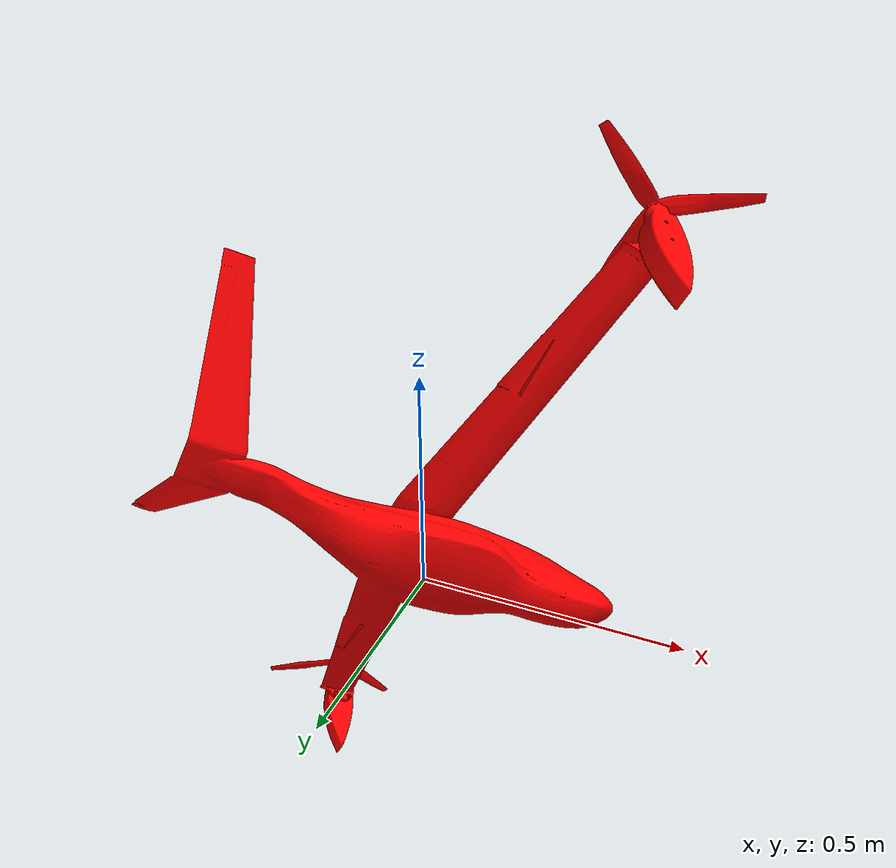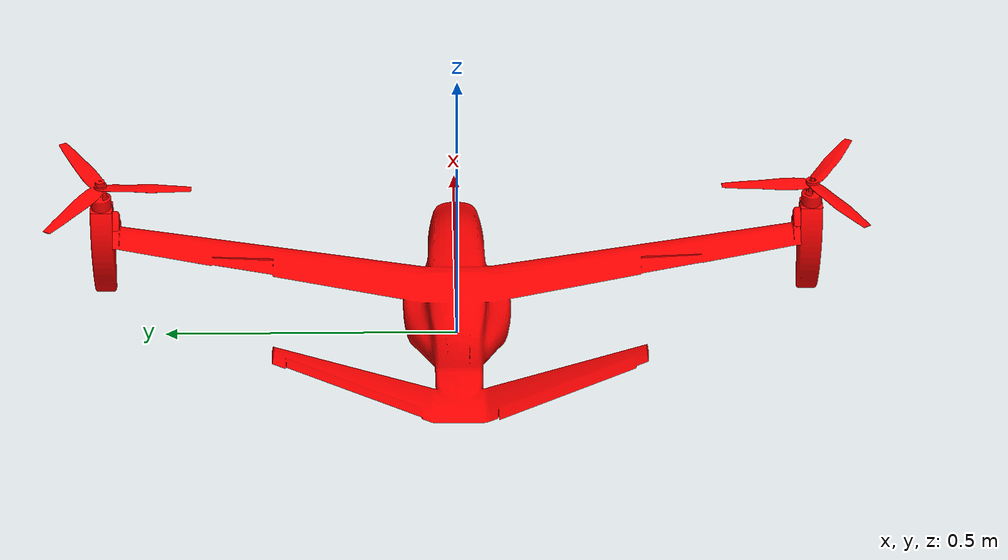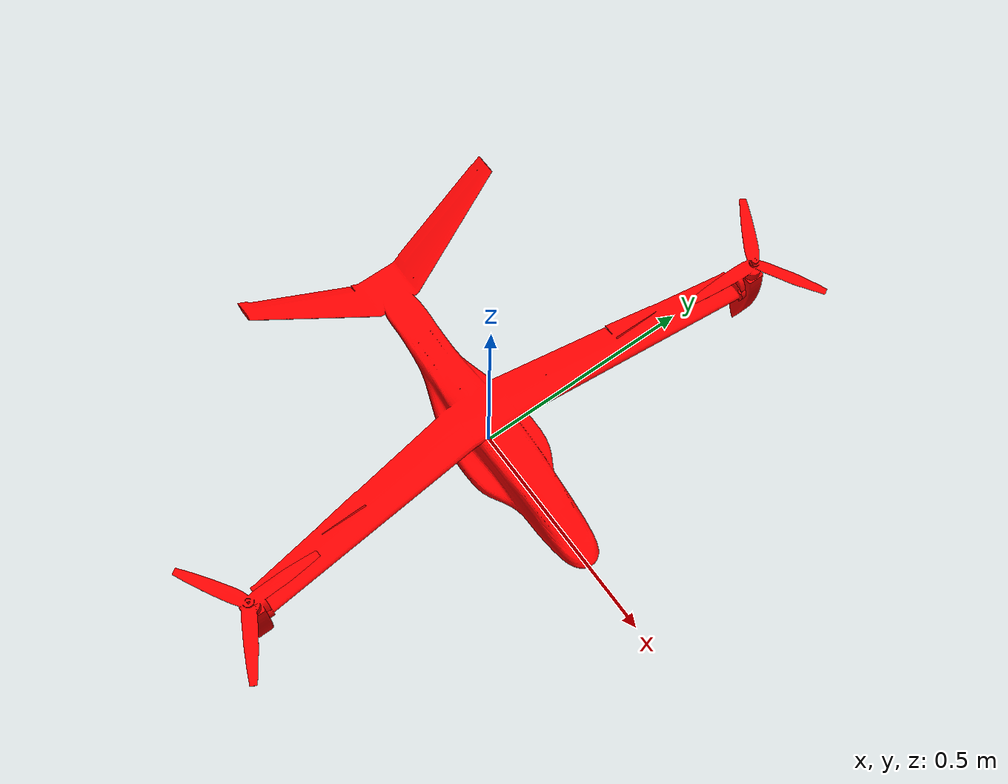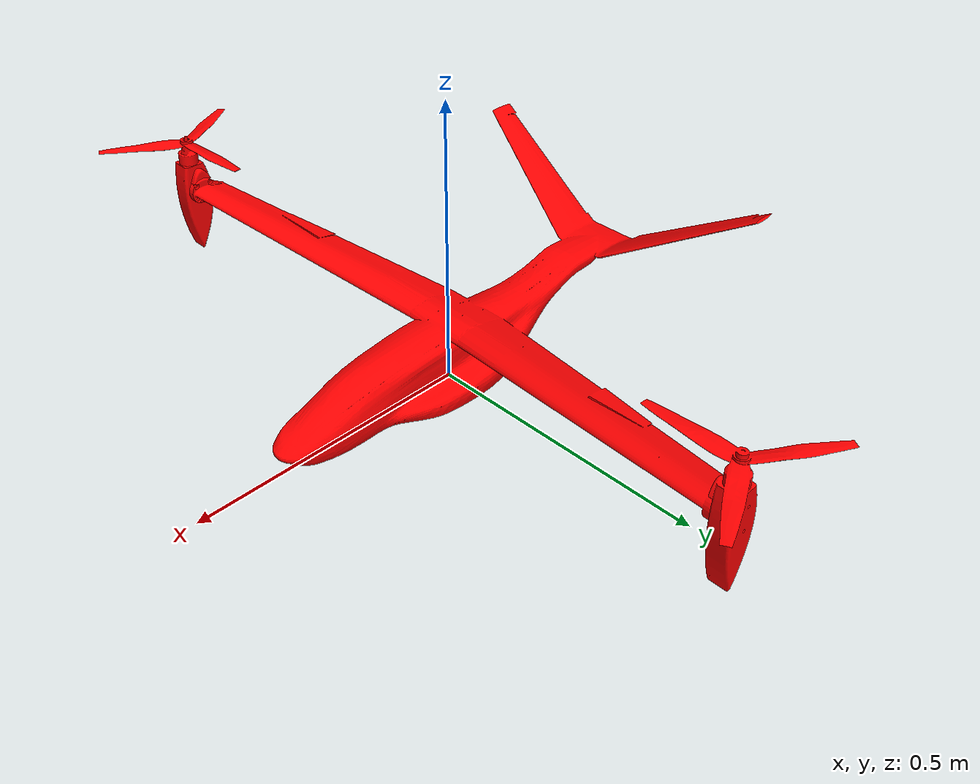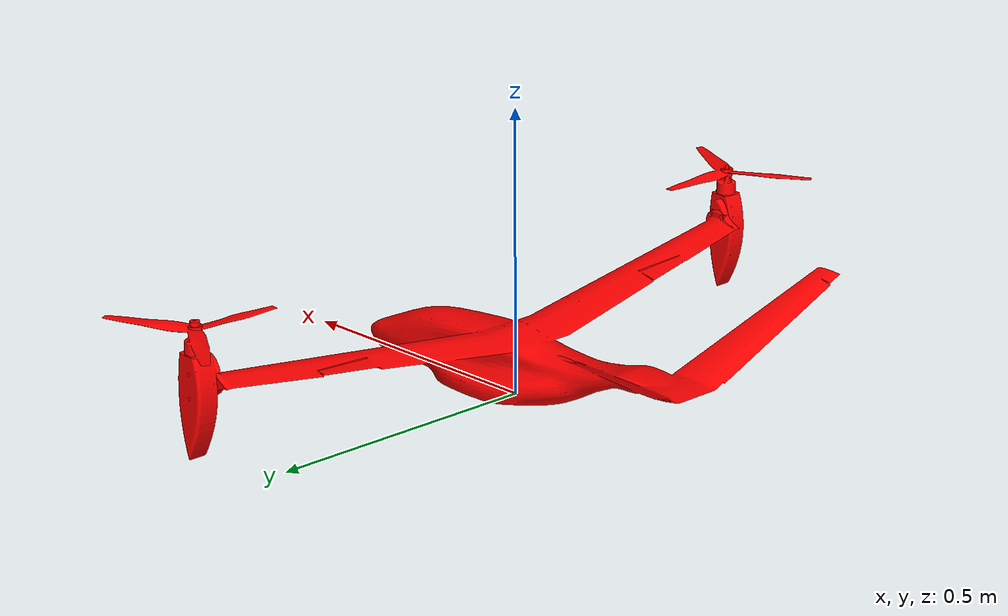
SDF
<?xml version="1.0" encoding="utf-8"?>
<sdf version="1.4">
  <model name="vant_quatro_lqr">
    <pose>0 0 0.0325 0 0 0</pose>
    <plugin name="clock" filename="libgz_clock.so">
      <topic>/gazebo/frc/time</topic>
    </plugin>
    <link name="Main_body">
      <gravity>1</gravity>
      <self_collide>0</self_collide>
      <pose>0.00868363919454268 -0.00241505251115258 0.0193917686877877 0 0 0</pose> <!--Provavel pose do centro de massa com rel a referencia adotada nesse caso a origem do desenho (ucs_body) -->
      <must_be_base_link>1</must_be_base_link>
      <velocity_decay>
        <linear>0</linear>
        <angular>0</angular>
      </velocity_decay>
      <inertial>
        <mass>7</mass>
        <pose>0 0 0 0 0 0</pose>
        <inertia>
          <ixx>0.1489</ixx>
          <ixy>0.0001</ixy>
          <ixz>-0.0189</ixz>
          <iyy>0.1789</iyy>
          <iyz>-0.000029</iyz>
          <izz>0.3011</izz>
        </inertia>
      </inertial>
     <collision name="Main_body_collision">
        <pose>-0.00868363919454268 0.00241505251115258 -0.0193917686877877 0 0 0</pose>
        <geometry>
          <mesh>
            <scale>1 1 1</scale>
            <uri>model://vant_quatro_lqr/meshes/Main_body_col.STL</uri>
          </mesh>
        </geometry>
        <surface>
          <contact>
            <ode />
          </contact>
          <friction>
            <ode>
              <mu>0</mu>
              <mu2>0</mu2>
            </ode>
          </friction>
        </surface>
      </collision>
      <visual name="Main_body_visual">
        <pose>-0.00868363919454268 0.00241505251115258 -0.0193917686877877 0 0 0</pose>
        <material>
          <ambient>1 0 0 1</ambient>
          <diffuse>1 0 0 1</diffuse>
        </material>
        <geometry>
          <mesh>
            <scale>1 1 1</scale>
            <uri>model://vant_quatro_lqr/meshes/Main_body.STL</uri>
          </mesh>
        </geometry>
      </visual>
    </link>
    <link name="Rotor_R">
      <gravity>1</gravity>
      <self_collide>0</self_collide>
      <pose>0.0780 -0.6073 0.1235 0 0 0 </pose>  <!-- UCS_RotorR em relação a referencia adotada nesse caso a origem do desenho (UCS_body)-->
      <must_be_base_link>0</must_be_base_link>
      <velocity_decay>
        <linear>0</linear>
        <angular>0</angular>
      </velocity_decay>
      <inertial>
        <mass>0.3</mass>
        <pose>0 0 0.03 0 0 0</pose>
        <inertia>
          <ixx>0.0007</ixx>
          <ixy>3.4E-07</ixy>
          <ixz>1.1E-05</ixz>
          <iyy>0.0007</iyy>
          <iyz>1.5E-05</iyz>
          <izz>0.0002</izz>
        </inertia>
      </inertial>
    <collision name="Rotor_R_collision">
        <pose>-0.0780 0.6073 -0.1235 0 0 0</pose> <!--pose multiplicado por -1-->
        <geometry>
          <mesh>
            <scale>1 1 1</scale>
            <uri>model://vant_quatro_lqr/meshes/Rotor_R_col.STL</uri>
          </mesh>
        </geometry>
        <surface>
          <contact>
            <ode />
          </contact>
          <friction>
            <ode>
              <mu>0</mu>
              <mu2>0</mu2>
            </ode>
          </friction>
        </surface>
      </collision>
      <visual name="Rotor_R_visual">
        <pose>-0.0780 0.6073 -0.1235 0 0 0</pose>  <!--pose do link multiplicado por -1 -->
        <material>
          <ambient>1 0 0 1</ambient>
          <diffuse>1 0 0 1</diffuse>
        </material>
        <geometry>
          <mesh>
            <scale>1 1 1</scale>
            <uri>model://vant_quatro_lqr/meshes/Rotor_R.STL</uri>
          </mesh>
        </geometry>
      </visual>
    </link>
    <joint name="MainbodyRotorR" type="revolute">
      <parent>Main_body</parent>
      <child>Rotor_R</child>
      <pose>0 0 0 0 0 0 </pose>  									<!-- pose relativa da junta com relação ao frame do link (UCS_body) -->
      <axis>
        <xyz>0 1 0</xyz>
        <limit>
          <upper>1.57</upper>
          <lower>-1.57</lower>
          <effort>2</effort>
        </limit>
         <dynamics>
          <damping>0</damping>
          <friction>0</friction>
        </dynamics>
      </axis>
    </joint>
    <link name="Rotor_L">
      <gravity>1</gravity>
      <self_collide>0</self_collide>
      <pose>0.0780 0.6073 0.1235 0 0 0</pose>
      <must_be_base_link>0</must_be_base_link>
      <velocity_decay>
        <linear>0</linear>
        <angular>0</angular>
      </velocity_decay>
      <inertial>
        <mass>0.3</mass>
        <pose>0 0 0.03 0 0 0</pose>
        <inertia>
          <ixx>0.0007</ixx>
          <ixy>3.4E-07</ixy>
          <ixz>1.1E-05</ixz>
          <iyy>0.0007</iyy>
          <iyz>1.5E-05</iyz>
          <izz>0.0002</izz>
        </inertia>
      </inertial>
      <collision name="Rotor_L_collision">
        <pose>-0.0780 -0.6073 -0.1235 0 0 0</pose>
        <geometry>
          <mesh>
            <scale>1 1 1</scale>
            <uri>model://vant_quatro_lqr/meshes/Rotor_L_col.STL</uri>
          </mesh>
        </geometry>
        <surface>
          <contact>
            <ode />
          </contact>
          <friction>
            <ode>
              <mu>0</mu>
              <mu2>0</mu2>
            </ode>
          </friction>
        </surface>
      </collision>
      <visual name="Rotor_L_visual">
        <pose>-0.0780 -0.6073 -0.1235 0 0 0</pose>
        <material>
          <ambient>1 0 0 1</ambient>
          <diffuse>1 0 0 1</diffuse>
        </material>
        <geometry>
          <mesh>
            <scale>1 1 1</scale>
            <uri>model://vant_quatro_lqr/meshes/Rotor_L.STL</uri>
          </mesh>
        </geometry>
      </visual>
    </link>
    <joint name="MainbodyRotorL" type="revolute">
      <parent>Main_body</parent>
      <child>Rotor_L</child>
      <pose>0 0 0 0 0 0</pose>
      <axis>
        <xyz>0 1 0</xyz>
        <limit>
          <upper>1.57</upper>
          <lower>-1.57</lower>
          <effort>2</effort>
        </limit>
        <dynamics>
          <damping>0</damping>
          <friction>0</friction>
        </dynamics>
      </axis>
    </joint>

  <plugin name="empuxo"
filename="libgazebo_ros_brushless_plugin.so">
            <topic_FR>Thrustdirteste</topic_FR>
            <LinkDir>Rotor_R</LinkDir>
            <topic_FL>Thrustesqteste</topic_FL>
            <LinkEsq>Rotor_L</LinkEsq>
            <DragCte>0.0001</DragCte>
     </plugin>
   <plugin name="VetorEstados"
filename="libgazebo_ros_AllData_plugin.so">
            <NameOfTopic>Estados</NameOfTopic>
            <NameOfJointR>MainbodyRotorR</NameOfJointR>
            <NameOfJointL>MainbodyRotorL</NameOfJointL>
            <bodyName>Main_body</bodyName>
     </plugin>
     <plugin name="RotorRplugin"
filename="libgazebo_ros_servo_motor_plugin.so">
            <NameOfJoint>MainbodyRotorR</NameOfJoint>
            <TopicPublisher>RotorRteste</TopicPublisher>
            <TopicSubscriber>RefRotorRteste</TopicSubscriber>
            <Modo>Torque</Modo>
            <Saturation>1</Saturation>
     </plugin>
      <plugin name="RotorLplugin"
filename="libgazebo_ros_servo_motor_plugin.so">
            <NameOfJoint>MainbodyRotorL</NameOfJoint>
            <TopicPublisher>RotorLteste</TopicPublisher>
            <TopicSubscriber>RefRotorLteste</TopicSubscriber>
            <Modo>Torque</Modo>
            <Saturation>1</Saturation>
     </plugin>
  </model>
</sdf>
